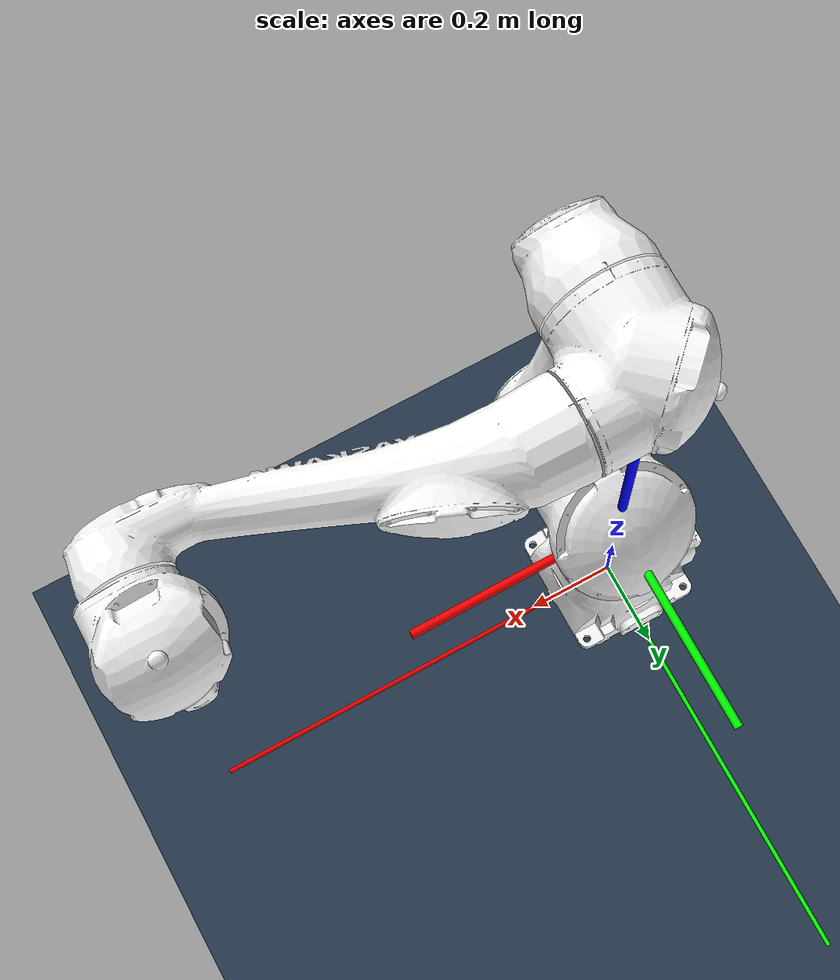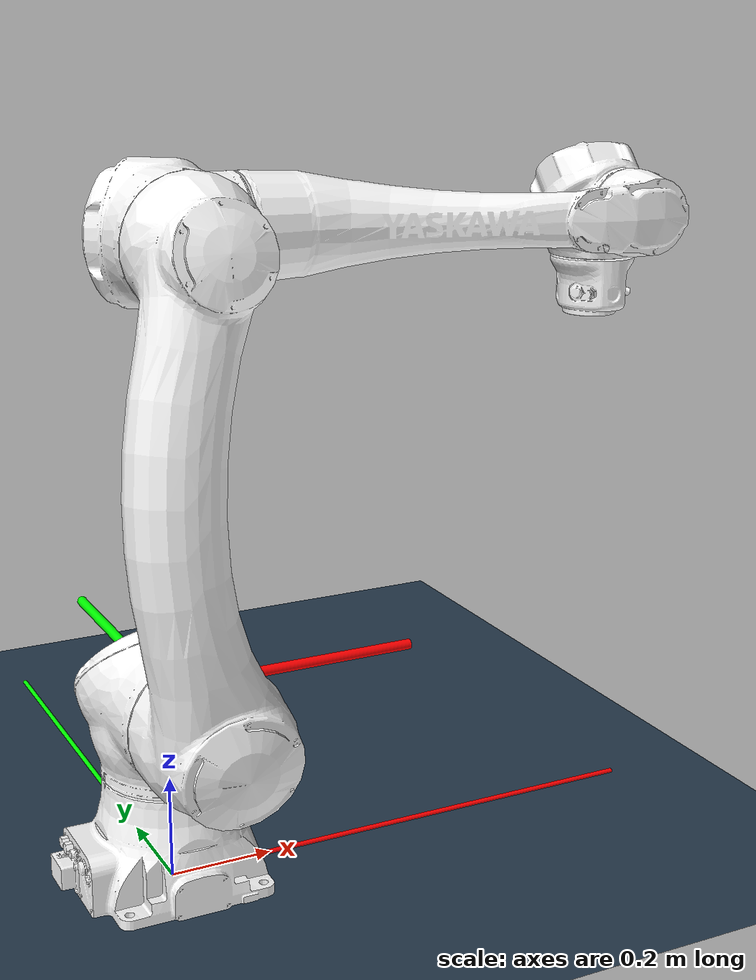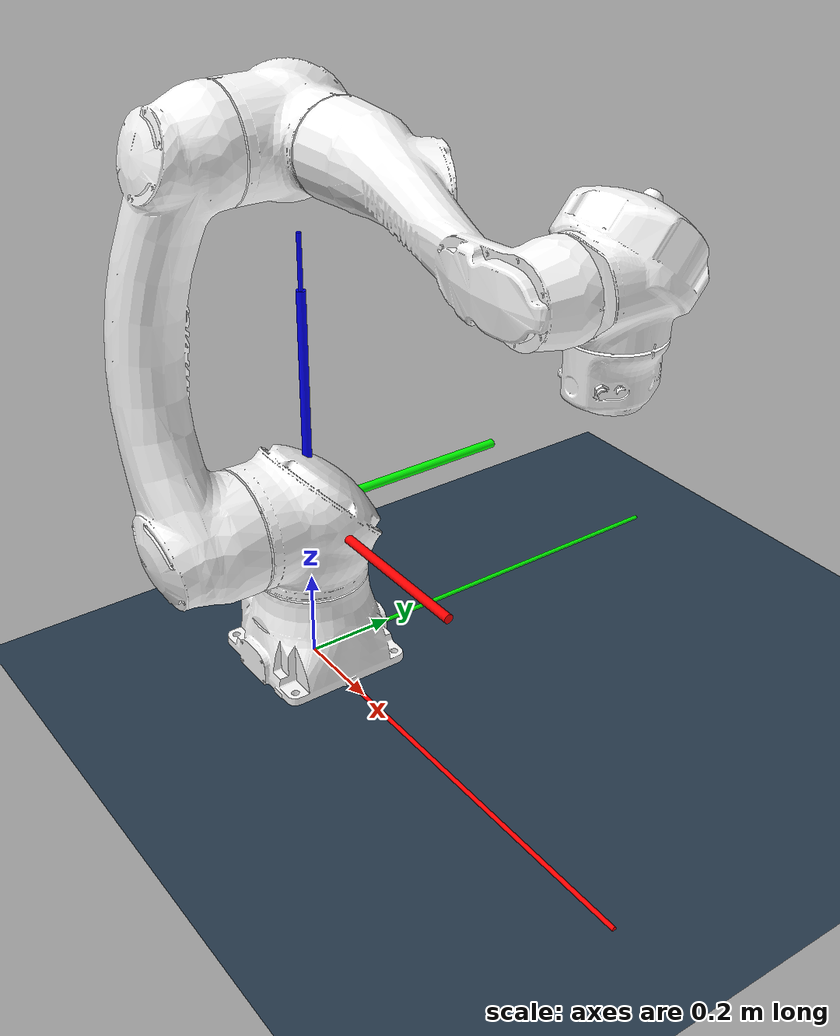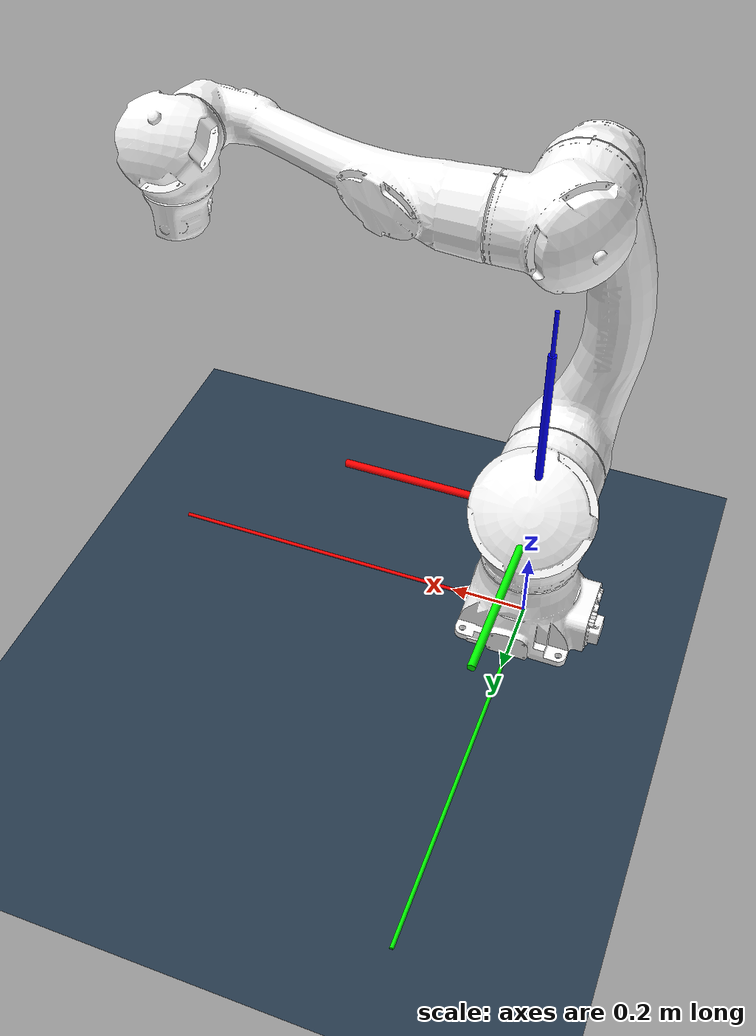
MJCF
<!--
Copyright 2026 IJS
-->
<mujoco model="hc30_scene">
  <compiler angle="radian" meshdir="assets/" texturedir="assets/"/>

  <option timestep="0.001" integrator="implicitfast"/>

  <visual>
    <global offwidth="1280" offheight="960"/>
    <map stiffness="700" fogstart="1" fogend="15" zfar="40" haze="1" shadowscale="0.5"/>
    <rgba haze="0.15 0.25 0.35 1"/>
  </visual>

  <statistic meansize="0.05"/>

  <default>
    <light castshadow="false"/>
    <general biastype="affine" biasprm="0 -1"/>
    <default class="hc30_main">
      <light castshadow="true"/>
      <general biastype="none" biasprm="0 0"/>
      <default class="hc30_robot">
        <material shininess="0.25"/>
        <joint range="-3.14159 3.14159"/>
        <general ctrlrange="-3.14159 3.14159" forcerange="-1200 1200" biastype="affine" gainprm="10000" biasprm="0 -10000 1"/>
        <default class="hc30_visual">
          <geom type="mesh" contype="0" conaffinity="0" group="2"/>
        </default>
        <default class="hc30_collision">
          <geom type="mesh" group="3"/>
        </default>
      </default>
    </default>
  </default>

  <asset>
    <texture type="skybox" colorspace="auto" builtin="gradient" rgb1="0.3 0.5 0.7" rgb2="0 0 0" width="512" height="3072"/>
    <texture type="2d" colorspace="auto" name="texplane" builtin="checker" mark="cross" rgb1="0.2 0.3 0.4" rgb2="0.1 0.15 0.2" markrgb="0.8 0.8 0.8" width="512" height="512"/>
    <material name="matplane" texture="texplane" texuniform="true" texrepeat="10 10" reflectance="0.3"/>
    <material name="hc30_white" class="hc30_robot" rgba="0.99 0.99 0.99 1"/>
    <mesh name="hc30_base_link_c" content_type="model/stl" file="hc20/base_link.stl"/>
    <mesh name="hc30_link_1_s_c" content_type="model/stl" file="hc20/link_1_s.stl"/>
    <mesh name="hc30_link_2_l_c" content_type="model/stl" file="hc20/link_2_l.stl"/>
    <mesh name="hc30_link_3_u_c" content_type="model/stl" file="hc20/link_3_u.stl"/>
    <mesh name="hc30_link_4_r_c" content_type="model/stl" file="hc20/link_4_r.stl"/>
    <mesh name="hc30_link_5_b_c" content_type="model/stl" file="hc20/link_5_b.stl"/>
    <mesh name="hc30_link_6_t_c" content_type="model/stl" file="hc20/link_6_t.stl"/>
    <mesh name="hc30_base_link" content_type="model/obj" file="hc20/base_link.obj"/>
    <mesh name="hc30_link_1_s" content_type="model/obj" file="hc20/link_1_s.obj"/>
    <mesh name="hc30_link_2_l" content_type="model/obj" file="hc20/link_2_l.obj"/>
    <mesh name="hc30_link_3_u" content_type="model/obj" file="hc20/link_3_u.obj"/>
    <mesh name="hc30_link_4_r" content_type="model/obj" file="hc20/link_4_r.obj"/>
    <mesh name="hc30_link_5_b" content_type="model/obj" file="hc20/link_5_b.obj"/>
    <mesh name="hc30_link_6_t" content_type="model/obj" file="hc20/link_6_t.obj"/>
  </asset>

  <worldbody>
    <geom name="ground" size="0 0 1" type="plane" condim="1" material="matplane"/>
    <site pos="0.5 0 0" quat="0.707107 0 0.707107 0" size="0.005 0.5" type="cylinder" rgba="1 0 0 1"/>
    <site pos="0 0.5 0" quat="0.707107 0.707107 0 0" size="0.005 0.5" type="cylinder" rgba="0 1 0 1"/>
    <site pos="0 0 0.5" size="0.005 0.5" type="cylinder" rgba="0 0 1 1"/>
    <light pos="0 0 2" dir="0 0 -1" diffuse="0.4 0.4 0.4" specular="0.1 0.1 0.1"/>
    <light pos="0 0 4" dir="0 0 -1" type="directional" diffuse="0.8 0.8 0.8" specular="0.2 0.2 0.2"/>
    <body name="Target" mocap="true">
      <site pos="0.05 0 0" quat="0.707107 0 0.707107 0" size="0.002 0.05" group="4" type="cylinder" rgba="1 0 0 1"/>
      <site pos="0 0.05 0" quat="0.707107 0.707107 0 0" size="0.002 0.05" group="4" type="cylinder" rgba="0 1 0 1"/>
      <site pos="0 0 0.05" size="0.002 0.05" group="4" type="cylinder" rgba="0 0 1 1"/>
      <site name="Target" pos="0 0 0" size="0.01" group="1" rgba="1 0.5 1 0.5"/>
    </body>
    <body name="hc30_base" childclass="hc30_robot" mocap="true">
      <body name="hc30" pos="0 0 0.38">
        <site name="x" group="1" pos="0.25 0 0" quat="0.707107 0 0.707107 0" size="0.01 0.25" type="cylinder" rgba="1 0 0 1"/>
        <site name="y" group="1" pos="0 0.25 0" quat="0.707107 0.707107 0 0" size="0.01 0.25" type="cylinder" rgba="0 1 0 1"/>
        <site name="z" group="1" pos="0 0 0.25" size="0.01 0.25" type="cylinder" rgba="0 0 1 1"/>
        <geom class="hc30_visual" pos="0 0 -0.38" material="hc30_white" mesh="hc30_base_link"/>
        <geom class="hc30_collision" mesh="hc30_base_link_c"/>
        <body name="hc30_link1">
          <joint name="hc30_joint1" pos="0 0 0" axis="0 0 1" actuatorfrcrange="-917.28 917.28"/>
          <geom class="hc30_visual" material="hc30_white" mesh="hc30_link_1_s"/>
          <geom class="hc30_collision" mesh="hc30_link_1_s_c"/>
          <body name="hc30_link2">
            <joint name="hc30_joint2" pos="0 0 0" axis="0 1 0" actuatorfrcrange="-1223.04 1223.04"/>
            <geom class="hc30_visual" material="hc30_white" mesh="hc30_link_2_l"/>
            <geom class="hc30_collision" mesh="hc30_link_2_l_c"/>
            <body name="hc30_link3" pos="0 0 0.82">
              <joint name="hc30_joint3" pos="0 0 0" axis="0 -1 0" range="-1.16937 4.31096" actuatorfrcrange="-642.88 642.88"/>
              <geom class="hc30_visual" material="hc30_white" mesh="hc30_link_3_u"/>
              <geom class="hc30_collision" mesh="hc30_link_3_u_c"/>
              <body name="hc30_link4" pos="0.88 0 0">
                <joint name="hc30_joint4" pos="0 0 0" axis="-1 0 0" range="-3.66519 3.66519" actuatorfrcrange="-368.48 368.48"/>
                <geom class="hc30_visual" material="hc30_white" mesh="hc30_link_4_r"/>
                <geom class="hc30_collision" mesh="hc30_link_4_r_c"/>
                <body name="hc30_link5" axisangle="0 1 0 1.5707963267948966" >
                  <joint name="hc30_joint5" pos="0 0 0" axis="0 -1 0" range="-1.5708 4.7123" actuatorfrcrange="-141.12 141.12"/>
                  <geom class="hc30_visual" material="hc30_white" mesh="hc30_link_5_b"/>
                  <geom class="hc30_collision" mesh="hc30_link_5_b_c"/>
                  <body name="hc30_link6">
                    <joint name="hc30_joint6" pos="0 0 0" axis="-1 0 0" range="-3.66519 3.66519" actuatorfrcrange="-141.12 141.12"/>
                    <geom class="hc30_visual" material="hc30_white" mesh="hc30_link_6_t"/>
                    <geom class="hc30_collision" mesh="hc30_link_6_t_c"/>
                    <body name="hc30_flange" pos="0.2 0 0" quat="0.707105 0 0.707108 0">
                      <site pos="0.125 0 0" quat="0.707107 0 0.707107 0" size="0.005 0.125" group="3" type="cylinder" rgba="1 0 0 1"/>
                      <site pos="0 0.125 0" quat="0.707107 0.707107 0 0" size="0.005 0.125" group="3" type="cylinder" rgba="0 1 0 1"/>
                      <site pos="0 0 0.125" size="0.005 0.125" group="3" type="cylinder" rgba="0 0 1 1"/>
                      <site name="hc30_flange" pos="0 0 0" quat="1.32679e-06 0 0 1" group="3"/>
                      <body name="hc30_TCP" quat="1.32679e-06 0 0 1">
                        <site pos="0.0625 0 0" quat="0.707107 0 0.707107 0" size="0.005 0.0625" group="4" type="cylinder" rgba="1 0 0 1"/>
                        <site pos="0 0.0625 0" quat="0.707107 0.707107 0 0" size="0.005 0.0625" group="4" type="cylinder" rgba="0 1 0 1"/>
                        <site pos="0 0 0.0626" size="0.005 0.0625" group="4" type="cylinder" rgba="0 0 1 1"/>
                        <site name="hc30_TCP" pos="0 0 0" size="0.008" group="4"/>
                        <camera name="hc30_Robot" pos="0.1 0 0" quat="0 1 0 0"/>
                      </body>
                    </body>
                  </body>
                </body>
              </body>
            </body>
          </body>
        </body>
      </body>
    </body>
  </worldbody>

  <contact>
    <exclude name="hc30_exclude_1" body1="hc30" body2="hc30_link1"/>
    <exclude name="hc30_exclude_2" body1="hc30_link1" body2="hc30_link2"/>
  </contact>

  <actuator>
    <general name="hc30_actuator1" class="hc30_robot" joint="hc30_joint1" gainprm="20000" biasprm="0 -20000"/>
    <general name="hc30_actuator2" class="hc30_robot" joint="hc30_joint2" gainprm="80000" biasprm="0 -80000"/>
    <general name="hc30_actuator3" class="hc30_robot" joint="hc30_joint3" ctrlrange="-1.16937 4.31096" gainprm="20000" biasprm="0 -20000"/>
    <general name="hc30_actuator4" class="hc30_robot" joint="hc30_joint4" ctrlrange="-3.66519 3.66519" gainprm="1000" biasprm="0 -1000 2"/>
    <general name="hc30_actuator5" class="hc30_robot" joint="hc30_joint5" gainprm="500" biasprm="0 -500 2"/>
    <general name="hc30_actuator6" class="hc30_robot" joint="hc30_joint6" ctrlrange="-3.66519 3.66519" gainprm="50" biasprm="0 -50 2"/>
  </actuator>

  <sensor>
    <framepos objtype="site" objname="hc30_TCP" name="hc30_pos"/>
    <framequat objtype="site" objname="hc30_TCP" name="hc30_ori"/>
    <framelinvel objtype="site" objname="hc30_TCP" name="hc30_v"/>
    <frameangvel objtype="site" objname="hc30_TCP" name="hc30_w"/>
    <force site="hc30_TCP" name="hc30_force" noise="0.5"/>
    <torque site="hc30_TCP" name="hc30_torque" noise="0.5"/>
    <jointpos joint="hc30_joint1" name="hc30_pos_joint1"/>
    <jointpos joint="hc30_joint2" name="hc30_pos_joint2"/>
    <jointpos joint="hc30_joint3" name="hc30_pos_joint3"/>
    <jointpos joint="hc30_joint4" name="hc30_pos_joint4"/>
    <jointpos joint="hc30_joint5" name="hc30_pos_joint5"/>
    <jointpos joint="hc30_joint6" name="hc30_pos_joint6"/>
    <jointvel joint="hc30_joint1" name="hc30_vel_joint1"/>
    <jointvel joint="hc30_joint2" name="hc30_vel_joint2"/>
    <jointvel joint="hc30_joint3" name="hc30_vel_joint3"/>
    <jointvel joint="hc30_joint4" name="hc30_vel_joint4"/>
    <jointvel joint="hc30_joint5" name="hc30_vel_joint5"/>
    <jointvel joint="hc30_joint6" name="hc30_vel_joint6"/>
  </sensor>
</mujoco>
